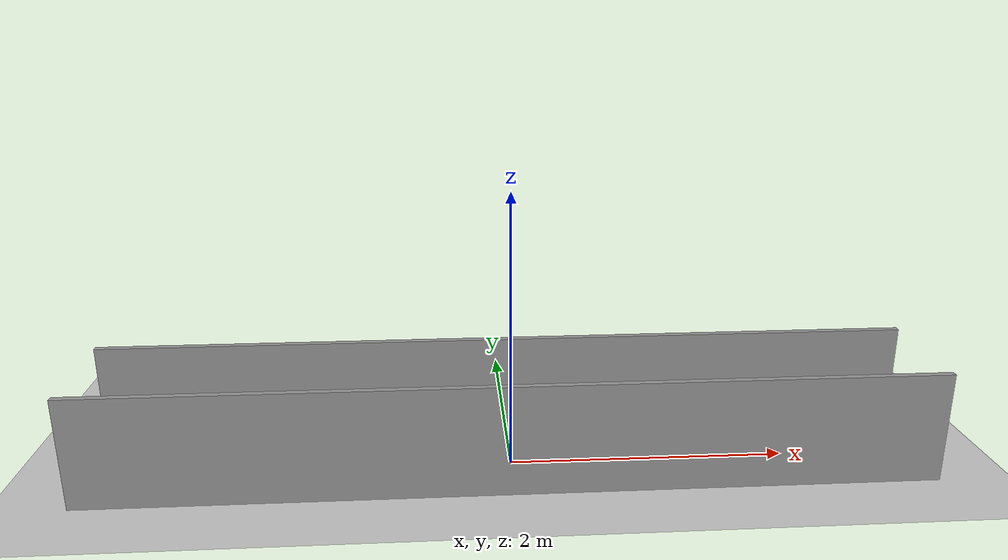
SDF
<?xml version="1.0" ?>
<sdf version="1.6">
  <world name="narrow_corridor">
    <include>
      <uri>model://ground_plane</uri>
    </include>
    <include>
      <uri>model://sun</uri>
    </include>

    <!-- Left wall of corridor -->
    <model name="wall_left">
      <static>true</static>
      <pose>0 0.45 0.4 0 0 0</pose>
      <link name="link">
        <collision name="collision">
          <geometry><box><size>6 0.05 0.8</size></box></geometry>
        </collision>
        <visual name="visual">
          <geometry><box><size>6 0.05 0.8</size></box></geometry>
          <material><ambient>0.6 0.6 0.6 1</ambient></material>
        </visual>
      </link>
    </model>

    <!-- Right wall of corridor (0.9m gap between walls) -->
    <model name="wall_right">
      <static>true</static>
      <pose>0 -0.45 0.4 0 0 0</pose>
      <link name="link">
        <collision name="collision">
          <geometry><box><size>6 0.05 0.8</size></box></geometry>
        </collision>
        <visual name="visual">
          <geometry><box><size>6 0.05 0.8</size></box></geometry>
          <material><ambient>0.6 0.6 0.6 1</ambient></material>
        </visual>
      </link>
    </model>

    <physics type="ode">
      <max_step_size>0.001</max_step_size>
      <real_time_factor>1</real_time_factor>
    </physics>
  </world>
</sdf>
